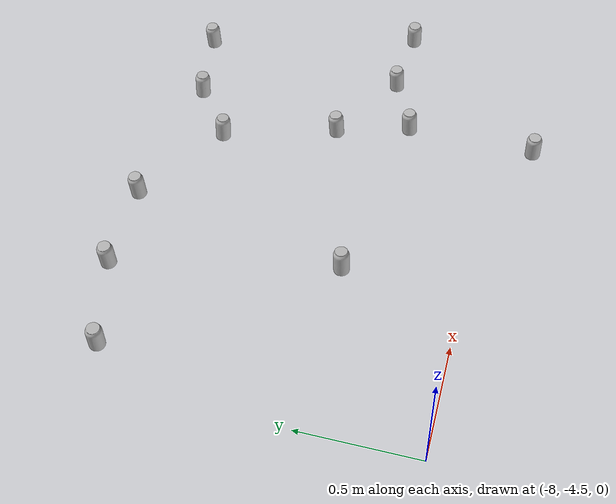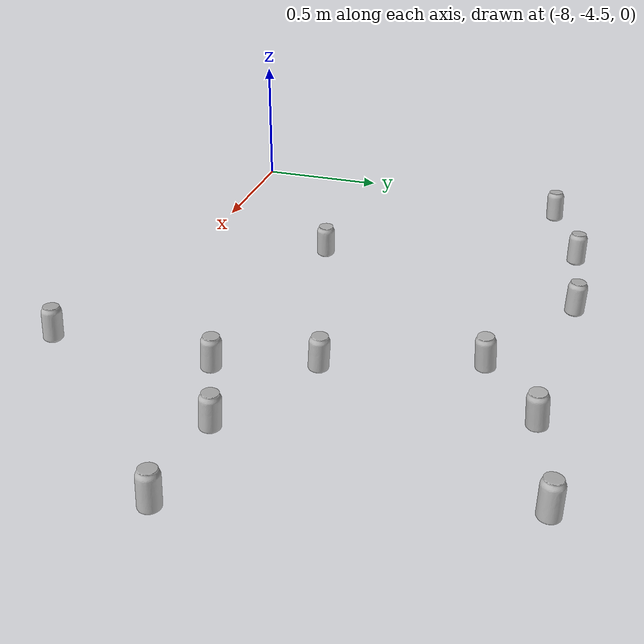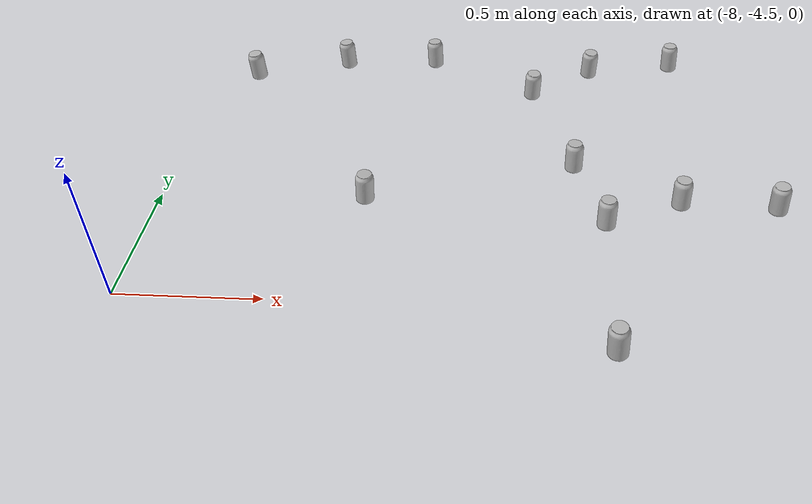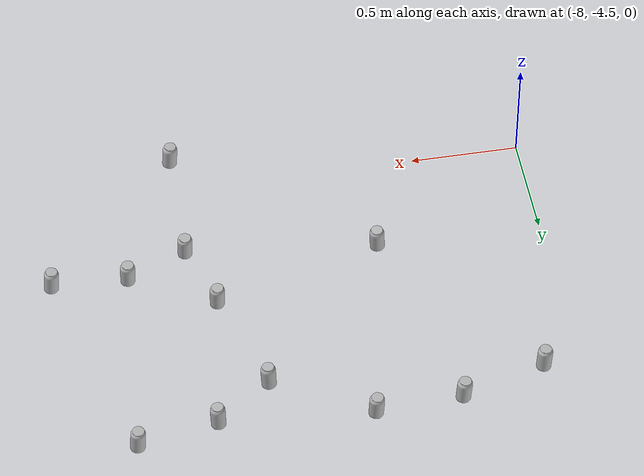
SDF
<sdf version="1.6">
 <world name="default">
  <model name="coke_can21">
   <link name="link">
    <inertial>
     <pose>0 0 0.06 0 -0 0</pose>
     <mass>0.39</mass>
     <inertia>
      <ixx>0.00055575</ixx>
      <ixy>0</ixy>
      <ixz>0</ixz>
      <iyy>0.00055575</iyy>
      <iyz>0</iyz>
      <izz>0.0001755</izz>
     </inertia>
    </inertial>
    <collision name="collision">
     <pose>0.003937 0.004724 -0.18 0 -0 0</pose>
     <geometry><mesh><uri>model://coke_can/meshes/coke_can.dae</uri></mesh></geometry>
     <surface>
      <friction><ode><mu>1</mu><mu2>1</mu2></ode></friction>
      <contact>
       <ode><kp>1e+07</kp><kd>1</kd><min_depth>0.001</min_depth><max_vel>0.1</max_vel></ode>
       <collide_bitmask>256</collide_bitmask>
      </contact>
     </surface>
    </collision>
    <visual name="visual">
     <pose>0.003937 0.004724 -0.18 0 -0 0</pose>
     <geometry><mesh><uri>model://coke_can/meshes/coke_can.dae</uri></mesh></geometry>
    </visual>
   </link>
   <pose>-6.36409 -4.10215 -0.002659 -0.055138 0.007723 0.257651</pose>
  </model>
  <model name="coke_can154">
   <link name="link">
    <inertial>
     <pose>0 0 0.06 0 -0 0</pose>
     <mass>0.39</mass>
     <inertia>
      <ixx>0.00055575</ixx>
      <ixy>0</ixy>
      <ixz>0</ixz>
      <iyy>0.00055575</iyy>
      <iyz>0</iyz>
      <izz>0.0001755</izz>
     </inertia>
    </inertial>
    <collision name="collision">
     <pose>0.003937 0.004724 -0.18 0 -0 0</pose>
     <geometry><mesh><uri>model://coke_can/meshes/coke_can.dae</uri></mesh></geometry>
     <surface>
      <friction><ode><mu>1</mu><mu2>1</mu2></ode></friction>
      <contact>
       <ode><kp>1e+07</kp><kd>1</kd><min_depth>0.001</min_depth><max_vel>0.1</max_vel></ode>
       <collide_bitmask>256</collide_bitmask>
      </contact>
     </surface>
    </collision>
    <visual name="visual">
     <pose>0.003937 0.004724 -0.18 0 -0 0</pose>
     <geometry><mesh><uri>model://coke_can/meshes/coke_can.dae</uri></mesh></geometry>
    </visual>
   </link>
   <pose>-6.37745 -4.67275 -0.002659 -0.055103 0.007745 1.44214</pose>
  </model>
  <model name="coke_can227">
   <link name="link">
    <inertial>
     <pose>0 0 0.06 0 -0 0</pose>
     <mass>0.39</mass>
     <inertia>
      <ixx>0.00055575</ixx>
      <ixy>0</ixy>
      <ixz>0</ixz>
      <iyy>0.00055575</iyy>
      <iyz>0</iyz>
      <izz>0.0001755</izz>
     </inertia>
    </inertial>
    <collision name="collision">
     <pose>0.003937 0.004724 -0.18 0 -0 0</pose>
     <geometry><mesh><uri>model://coke_can/meshes/coke_can.dae</uri></mesh></geometry>
     <surface>
      <friction><ode><mu>1</mu><mu2>1</mu2></ode></friction>
      <contact>
       <ode><kp>1e+07</kp><kd>1</kd><min_depth>0.001</min_depth><max_vel>0.1</max_vel></ode>
       <collide_bitmask>256</collide_bitmask>
      </contact>
     </surface>
    </collision>
    <visual name="visual">
     <pose>0.003937 0.004724 -0.18 0 -0 0</pose>
     <geometry><mesh><uri>model://coke_can/meshes/coke_can.dae</uri></mesh></geometry>
    </visual>
   </link>
   <pose>-6.61524 -3.27676 -0.002659 -0.055099 0.007751 -2.25233</pose>
  </model>
  <model name="coke_can294">
   <link name="link">
    <inertial>
     <pose>0 0 0.06 0 -0 0</pose>
     <mass>0.39</mass>
     <inertia>
      <ixx>0.00055575</ixx>
      <ixy>0</ixy>
      <ixz>0</ixz>
      <iyy>0.00055575</iyy>
      <iyz>0</iyz>
      <izz>0.0001755</izz>
     </inertia>
    </inertial>
    <collision name="collision">
     <pose>0.003937 0.004724 -0.18 0 -0 0</pose>
     <geometry><mesh><uri>model://coke_can/meshes/coke_can.dae</uri></mesh></geometry>
     <surface>
      <friction><ode><mu>1</mu><mu2>1</mu2></ode></friction>
      <contact>
       <ode><kp>1e+07</kp><kd>1</kd><min_depth>0.001</min_depth><max_vel>0.1</max_vel></ode>
       <collide_bitmask>256</collide_bitmask>
      </contact>
     </surface>
    </collision>
    <visual name="visual">
     <pose>0.003937 0.004724 -0.18 0 -0 0</pose>
     <geometry><mesh><uri>model://coke_can/meshes/coke_can.dae</uri></mesh></geometry>
    </visual>
   </link>
   <pose>-7.23923 -3.99753 -0.002659 -0.055095 0.007754 -0.779191</pose>
  </model>
  <model name="coke_can345">
   <link name="link">
    <inertial>
     <pose>0 0 0.06 0 -0 0</pose>
     <mass>0.39</mass>
     <inertia>
      <ixx>0.00055575</ixx>
      <ixy>0</ixy>
      <ixz>0</ixz>
      <iyy>0.00055575</iyy>
      <iyz>0</iyz>
      <izz>0.0001755</izz>
     </inertia>
    </inertial>
    <collision name="collision">
     <pose>0.003937 0.004724 -0.18 0 -0 0</pose>
     <geometry><mesh><uri>model://coke_can/meshes/coke_can.dae</uri></mesh></geometry>
     <surface>
      <friction><ode><mu>1</mu><mu2>1</mu2></ode></friction>
      <contact>
       <ode><kp>1e+07</kp><kd>1</kd><min_depth>0.001</min_depth><max_vel>0.1</max_vel></ode>
       <collide_bitmask>256</collide_bitmask>
      </contact>
     </surface>
    </collision>
    <visual name="visual">
     <pose>0.003937 0.004724 -0.18 0 -0 0</pose>
     <geometry><mesh><uri>model://coke_can/meshes/coke_can.dae</uri></mesh></geometry>
    </visual>
   </link>
   <pose>-7.04971 -3.03348 -0.002659 -0.055112 0.007743 0.715067</pose>
  </model>
  <model name="coke_can458">
   <link name="link">
    <inertial>
     <pose>0 0 0.06 0 -0 0</pose>
     <mass>0.39</mass>
     <inertia>
      <ixx>0.00055575</ixx>
      <ixy>0</ixy>
      <ixz>0</ixz>
      <iyy>0.00055575</iyy>
      <iyz>0</iyz>
      <izz>0.0001755</izz>
     </inertia>
    </inertial>
    <collision name="collision">
     <pose>0.003937 0.004724 -0.18 0 -0 0</pose>
     <geometry><mesh><uri>model://coke_can/meshes/coke_can.dae</uri></mesh></geometry>
     <surface>
      <friction><ode><mu>1</mu><mu2>1</mu2></ode></friction>
      <contact>
       <ode><kp>1e+07</kp><kd>1</kd><min_depth>0.001</min_depth><max_vel>0.1</max_vel></ode>
       <collide_bitmask>256</collide_bitmask>
      </contact>
     </surface>
    </collision>
    <visual name="visual">
     <pose>0.003937 0.004724 -0.18 0 -0 0</pose>
     <geometry><mesh><uri>model://coke_can/meshes/coke_can.dae</uri></mesh></geometry>
    </visual>
   </link>
   <pose>-5.99292 -3.02302 -0.002659 -0.055097 0.007751 1.26334</pose>
  </model>
  <model name="coke_can493">
   <link name="link">
    <inertial>
     <pose>0 0 0.06 0 -0 0</pose>
     <mass>0.39</mass>
     <inertia>
      <ixx>0.00055575</ixx>
      <ixy>0</ixy>
      <ixz>0</ixz>
      <iyy>0.00055575</iyy>
      <iyz>0</iyz>
      <izz>0.0001755</izz>
     </inertia>
    </inertial>
    <collision name="collision">
     <pose>0.003937 0.004724 -0.18 0 -0 0</pose>
     <geometry><mesh><uri>model://coke_can/meshes/coke_can.dae</uri></mesh></geometry>
     <surface>
      <friction><ode><mu>1</mu><mu2>1</mu2></ode></friction>
      <contact>
       <ode><kp>1e+07</kp><kd>1</kd><min_depth>0.001</min_depth><max_vel>0.1</max_vel></ode>
       <collide_bitmask>256</collide_bitmask>
      </contact>
     </surface>
    </collision>
    <visual name="visual">
     <pose>0.003937 0.004724 -0.18 0 -0 0</pose>
     <geometry><mesh><uri>model://coke_can/meshes/coke_can.dae</uri></mesh></geometry>
    </visual>
   </link>
   <pose>-6.36035 -3.09038 -0.002659 -0.055106 0.007745 -2.37349</pose>
  </model>
  <model name="coke_can649">
   <link name="link">
    <inertial>
     <pose>0 0 0.06 0 -0 0</pose>
     <mass>0.39</mass>
     <inertia>
      <ixx>0.00055575</ixx>
      <ixy>0</ixy>
      <ixz>0</ixz>
      <iyy>0.00055575</iyy>
      <iyz>0</iyz>
      <izz>0.0001755</izz>
     </inertia>
    </inertial>
    <collision name="collision">
     <pose>0.003937 0.004724 -0.18 0 -0 0</pose>
     <geometry><mesh><uri>model://coke_can/meshes/coke_can.dae</uri></mesh></geometry>
     <surface>
      <friction><ode><mu>1</mu><mu2>1</mu2></ode></friction>
      <contact>
       <ode><kp>1e+07</kp><kd>1</kd><min_depth>0.001</min_depth><max_vel>0.1</max_vel></ode>
       <collide_bitmask>256</collide_bitmask>
      </contact>
     </surface>
    </collision>
    <visual name="visual">
     <pose>0.003937 0.004724 -0.18 0 -0 0</pose>
     <geometry><mesh><uri>model://coke_can/meshes/coke_can.dae</uri></mesh></geometry>
    </visual>
   </link>
   <pose>-7.83307 -3.16779 -0.002659 -0.055102 0.007748 2.26245</pose>
  </model>
  <model name="coke_can690">
   <link name="link">
    <inertial>
     <pose>0 0 0.06 0 -0 0</pose>
     <mass>0.39</mass>
     <inertia>
      <ixx>0.00055575</ixx>
      <ixy>0</ixy>
      <ixz>0</ixz>
      <iyy>0.00055575</iyy>
      <iyz>0</iyz>
      <izz>0.0001755</izz>
     </inertia>
    </inertial>
    <collision name="collision">
     <pose>0.003937 0.004724 -0.18 0 -0 0</pose>
     <geometry><mesh><uri>model://coke_can/meshes/coke_can.dae</uri></mesh></geometry>
     <surface>
      <friction><ode><mu>1</mu><mu2>1</mu2></ode></friction>
      <contact>
       <ode><kp>1e+07</kp><kd>1</kd><min_depth>0.001</min_depth><max_vel>0.1</max_vel></ode>
       <collide_bitmask>256</collide_bitmask>
      </contact>
     </surface>
    </collision>
    <visual name="visual">
     <pose>0.003937 0.004724 -0.18 0 -0 0</pose>
     <geometry><mesh><uri>model://coke_can/meshes/coke_can.dae</uri></mesh></geometry>
    </visual>
   </link>
   <pose>-6.46248 -3.77914 -0.002658 -0.055086 0.00776 0.277696</pose>
  </model>
  <model name="coke_can735">
   <link name="link">
    <inertial>
     <pose>0 0 0.06 0 -0 0</pose>
     <mass>0.39</mass>
     <inertia>
      <ixx>0.00055575</ixx>
      <ixy>0</ixy>
      <ixz>0</ixz>
      <iyy>0.00055575</iyy>
      <iyz>0</iyz>
      <izz>0.0001755</izz>
     </inertia>
    </inertial>
    <collision name="collision">
     <pose>0.003937 0.004724 -0.18 0 -0 0</pose>
     <geometry><mesh><uri>model://coke_can/meshes/coke_can.dae</uri></mesh></geometry>
     <surface>
      <friction><ode><mu>1</mu><mu2>1</mu2></ode></friction>
      <contact>
       <ode><kp>1e+07</kp><kd>1</kd><min_depth>0.001</min_depth><max_vel>0.1</max_vel></ode>
       <collide_bitmask>256</collide_bitmask>
      </contact>
     </surface>
    </collision>
    <visual name="visual">
     <pose>0.003937 0.004724 -0.18 0 -0 0</pose>
     <geometry><mesh><uri>model://coke_can/meshes/coke_can.dae</uri></mesh></geometry>
    </visual>
   </link>
   <pose>-5.73594 -3.99553 -0.002659 -0.055116 0.007739 1.59748</pose>
  </model>
  <model name="coke_can774">
   <link name="link">
    <inertial>
     <pose>0 0 0.06 0 -0 0</pose>
     <mass>0.39</mass>
     <inertia>
      <ixx>0.00055575</ixx>
      <ixy>0</ixy>
      <ixz>0</ixz>
      <iyy>0.00055575</iyy>
      <iyz>0</iyz>
      <izz>0.0001755</izz>
     </inertia>
    </inertial>
    <collision name="collision">
     <pose>0.003937 0.004724 -0.18 0 -0 0</pose>
     <geometry><mesh><uri>model://coke_can/meshes/coke_can.dae</uri></mesh></geometry>
     <surface>
      <friction><ode><mu>1</mu><mu2>1</mu2></ode></friction>
      <contact>
       <ode><kp>1e+07</kp><kd>1</kd><min_depth>0.001</min_depth><max_vel>0.1</max_vel></ode>
       <collide_bitmask>256</collide_bitmask>
      </contact>
     </surface>
    </collision>
    <visual name="visual">
     <pose>0.003937 0.004724 -0.18 0 -0 0</pose>
     <geometry><mesh><uri>model://coke_can/meshes/coke_can.dae</uri></mesh></geometry>
    </visual>
   </link>
   <pose>-7.44491 -3.0541 -0.002659 -0.055104 0.007746 1.44323</pose>
  </model>
  <model name="coke_can805">
   <link name="link">
    <inertial>
     <pose>0 0 0.06 0 -0 0</pose>
     <mass>0.39</mass>
     <inertia>
      <ixx>0.00055575</ixx>
      <ixy>0</ixy>
      <ixz>0</ixz>
      <iyy>0.00055575</iyy>
      <iyz>0</iyz>
      <izz>0.0001755</izz>
     </inertia>
    </inertial>
    <collision name="collision">
     <pose>0.003937 0.004724 -0.18 0 -0 0</pose>
     <geometry><mesh><uri>model://coke_can/meshes/coke_can.dae</uri></mesh></geometry>
     <surface>
      <friction><ode><mu>1</mu><mu2>1</mu2></ode></friction>
      <contact>
       <ode><kp>1e+07</kp><kd>1</kd><min_depth>0.001</min_depth><max_vel>0.1</max_vel></ode>
       <collide_bitmask>256</collide_bitmask>
      </contact>
     </surface>
    </collision>
    <visual name="visual">
     <pose>0.003937 0.004724 -0.18 0 -0 0</pose>
     <geometry><mesh><uri>model://coke_can/meshes/coke_can.dae</uri></mesh></geometry>
    </visual>
   </link>
   <pose>-6.08312 -3.98208 -0.002659 -0.055125 0.007732 0.567517</pose>
  </model>
 </world>
</sdf>
